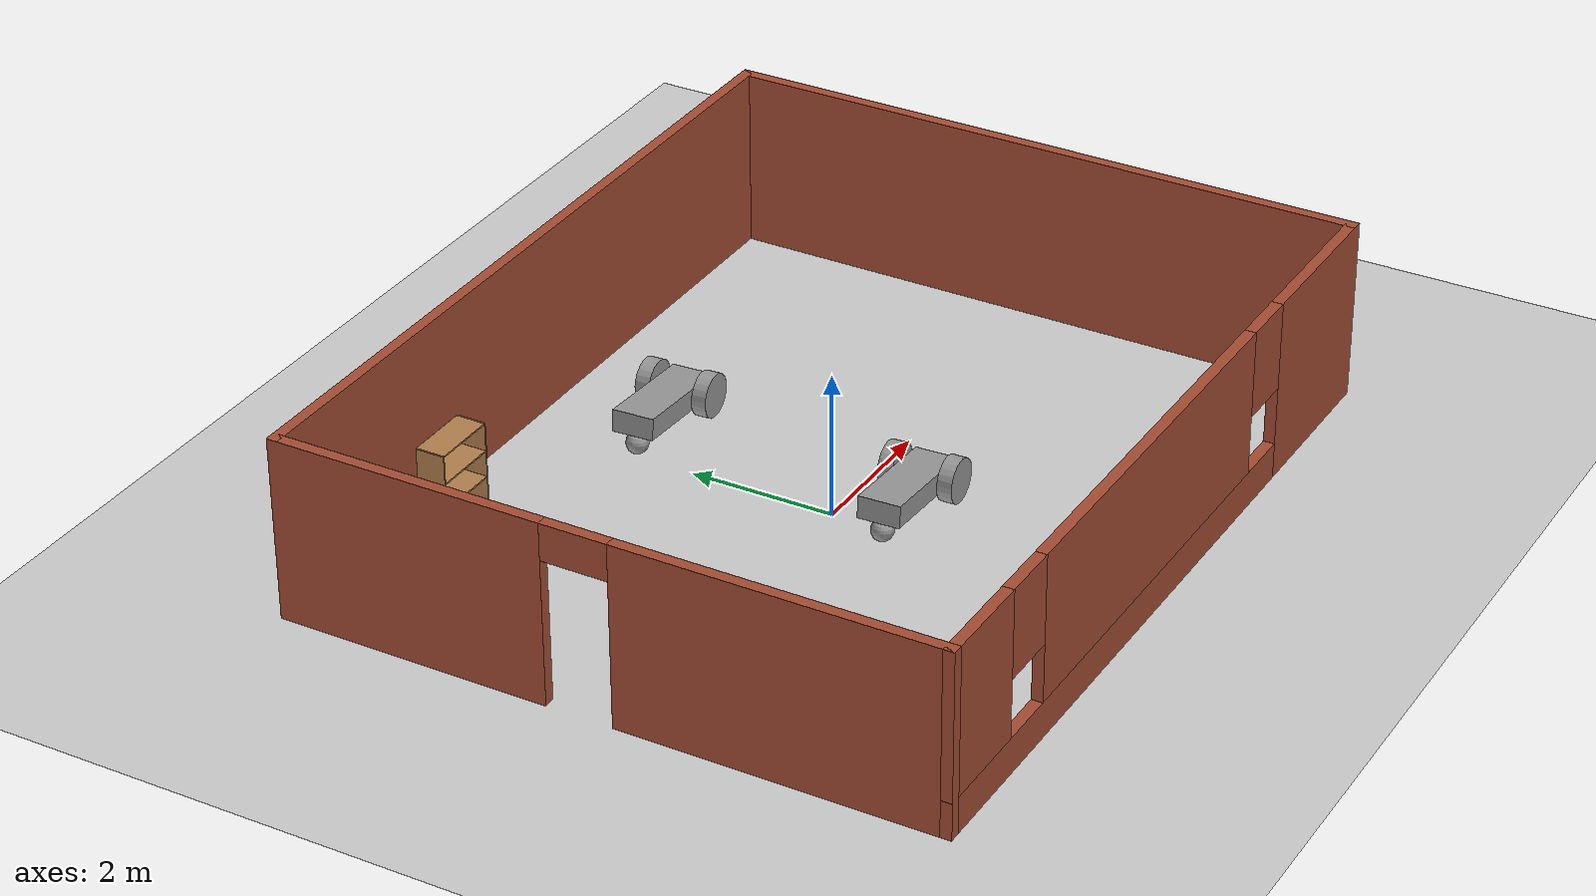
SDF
<sdf version="1.6">
 <world name="default">
  <plugin name="helloWorld" filename="libhelloWorld.so"/>
  <light name="sun" type="directional">
   <pose>0 0 10 0 -0 0</pose>
   <diffuse>0.8 0.8 0.8 1</diffuse>
   <specular>0.2 0.2 0.2 1</specular>
   <attenuation>
    <range>1000</range>
    <constant>0.9</constant>
    <linear>0.01</linear>
    <quadratic>0.001</quadratic>
   </attenuation>
   <direction>-0.5 0.1 -0.9</direction>
  </light>
  <model name="ground_plane">
   <static>1</static>
   <link name="link">
    <collision name="collision">
     <geometry><plane><normal>0 0 1</normal><size>100 100</size></plane></geometry>
     <surface>
      <contact><collide_bitmask>65535</collide_bitmask></contact>
      <friction><ode><mu>100</mu><mu2>50</mu2></ode></friction>
     </surface>
    </collision>
    <visual name="visual">
     <cast_shadows>0</cast_shadows>
     <geometry><plane><normal>0 0 1</normal><size>100 100</size></plane></geometry>
     <material>
      <script><uri>file://media/materials/scripts/gazebo.material</uri><name>Gazebo/Grey</name></script>
     </material>
    </visual>
   </link>
  </model>
  <gravity>0 0 -9.8</gravity>
  <magnetic_field>6e-06 2.3e-05 -4.2e-05</magnetic_field>
  <atmosphere type="adiabatic"/>
  <physics name="default_physics" default="0" type="ode">
   <max_step_size>0.001</max_step_size>
   <real_time_factor>1</real_time_factor>
   <real_time_update_rate>1000</real_time_update_rate>
  </physics>
  <scene><ambient>0.4 0.4 0.4 1</ambient><background>0.7 0.7 0.7 1</background><shadows>1</shadows></scene>
  <spherical_coordinates>
   <surface_model>EARTH_WGS84</surface_model>
   <latitude_deg>0</latitude_deg>
   <longitude_deg>0</longitude_deg>
   <elevation>0</elevation>
   <heading_deg>0</heading_deg>
  </spherical_coordinates>
  <model name="basicBuilding">
   <pose>0.33245 0.113374 0 0 -0 0</pose>
   <link name="Wall_2">
    <pose>-5.425 0 0 0 -0 1.5708</pose>
    <visual name="Wall_2_Visual_0">
     <pose>-2.31293 0 1.25 0 -0 0</pose>
     <geometry><box><size>4.37413 0.15 2.5</size></box></geometry>
     <material>
      <script><uri>file://media/materials/scripts/gazebo.material</uri><name>Gazebo/Bricks</name></script>
      <ambient>1 1 1 1</ambient>
     </material>
     <meta><layer>0</layer></meta>
    </visual>
    <collision name="Wall_2_Collision_0">
     <geometry><box><size>4.37413 0.15 2.5</size></box></geometry>
     <pose>-2.31293 0 1.25 0 -0 0</pose>
    </collision>
    <visual name="Wall_2_Visual_1">
     <pose>2.63707 0 1.25 0 -0 0</pose>
     <geometry><box><size>3.72587 0.15 2.5</size></box></geometry>
     <material>
      <script><uri>file://media/materials/scripts/gazebo.material</uri><name>Gazebo/Bricks</name></script>
      <ambient>1 1 1 1</ambient>
     </material>
     <meta><layer>0</layer></meta>
    </visual>
    <collision name="Wall_2_Collision_1">
     <geometry><box><size>3.72587 0.15 2.5</size></box></geometry>
     <pose>2.63707 0 1.25 0 -0 0</pose>
    </collision>
    <visual name="Wall_2_Visual_2">
     <pose>0.324133 0 2.25 0 -0 0</pose>
     <geometry><box><size>0.9 0.15 0.5</size></box></geometry>
     <material>
      <script><uri>file://media/materials/scripts/gazebo.material</uri><name>Gazebo/Bricks</name></script>
      <ambient>1 1 1 1</ambient>
     </material>
     <meta><layer>0</layer></meta>
    </visual>
    <collision name="Wall_2_Collision_2">
     <geometry><box><size>0.9 0.15 0.5</size></box></geometry>
     <pose>0.324133 0 2.25 0 -0 0</pose>
    </collision>
   </link>
   <link name="Wall_3">
    <collision name="Wall_3_Collision">
     <geometry><box><size>11 0.15 2.5</size></box></geometry>
     <pose>0 0 1.25 0 -0 0</pose>
    </collision>
    <visual name="Wall_3_Visual">
     <pose>0 0 1.25 0 -0 0</pose>
     <geometry><box><size>11 0.15 2.5</size></box></geometry>
     <material>
      <script><uri>file://media/materials/scripts/gazebo.material</uri><name>Gazebo/Bricks</name></script>
      <ambient>0.760784 0.662745 0.627451 1</ambient>
     </material>
     <meta><layer>0</layer></meta>
    </visual>
    <pose>0 4.425 0 0 -0 0</pose>
   </link>
   <link name="Wall_4">
    <collision name="Wall_4_Collision">
     <geometry><box><size>9 0.15 2.5</size></box></geometry>
     <pose>0 0 1.25 0 -0 0</pose>
    </collision>
    <visual name="Wall_4_Visual">
     <pose>0 0 1.25 0 -0 0</pose>
     <geometry><box><size>9 0.15 2.5</size></box></geometry>
     <material>
      <script><uri>file://media/materials/scripts/gazebo.material</uri><name>Gazebo/Bricks</name></script>
      <ambient>0.760784 0.662745 0.627451 1</ambient>
     </material>
     <meta><layer>0</layer></meta>
    </visual>
    <pose>5.425 0 0 0 0 -1.5708</pose>
   </link>
   <link name="Wall_5">
    <pose>0 -4.425 0 0 -0 3.14159</pose>
    <visual name="Wall_5_Visual_0">
     <pose>-4.30944 0 1.25 0 -0 0</pose>
     <geometry><box><size>2.38112 0.15 2.5</size></box></geometry>
     <material>
      <script><uri>file://media/materials/scripts/gazebo.material</uri><name>Gazebo/Bricks</name></script>
      <ambient>0.760784 0.662745 0.627451 1</ambient>
     </material>
     <meta><layer>0</layer></meta>
    </visual>
    <collision name="Wall_5_Collision_0">
     <geometry><box><size>2.38112 0.15 2.5</size></box></geometry>
     <pose>-4.30944 0 1.25 0 -0 0</pose>
    </collision>
    <visual name="Wall_5_Visual_1">
     <pose>1.19056 0 0.25 0 -0 0</pose>
     <geometry><box><size>8.61888 0.15 0.5</size></box></geometry>
     <material>
      <script><uri>file://media/materials/scripts/gazebo.material</uri><name>Gazebo/Bricks</name></script>
      <ambient>0.760784 0.662745 0.627451 1</ambient>
     </material>
     <meta><layer>0</layer></meta>
    </visual>
    <collision name="Wall_5_Collision_1">
     <geometry><box><size>8.61888 0.15 0.5</size></box></geometry>
     <pose>1.19056 0 0.25 0 -0 0</pose>
    </collision>
    <visual name="Wall_5_Visual_2">
     <pose>0.491179 0 1.5 0 -0 0</pose>
     <geometry><box><size>5.62012 0.15 2</size></box></geometry>
     <material>
      <script><uri>file://media/materials/scripts/gazebo.material</uri><name>Gazebo/Bricks</name></script>
      <ambient>0.760784 0.662745 0.627451 1</ambient>
     </material>
     <meta><layer>0</layer></meta>
    </visual>
    <collision name="Wall_5_Collision_2">
     <geometry><box><size>5.62012 0.15 2</size></box></geometry>
     <pose>0.491179 0 1.5 0 -0 0</pose>
    </collision>
    <visual name="Wall_5_Visual_3">
     <pose>4.80062 0 1.5 0 -0 0</pose>
     <geometry><box><size>1.39876 0.15 2</size></box></geometry>
     <material>
      <script><uri>file://media/materials/scripts/gazebo.material</uri><name>Gazebo/Bricks</name></script>
      <ambient>0.760784 0.662745 0.627451 1</ambient>
     </material>
     <meta><layer>0</layer></meta>
    </visual>
    <collision name="Wall_5_Collision_3">
     <geometry><box><size>1.39876 0.15 2</size></box></geometry>
     <pose>4.80062 0 1.5 0 -0 0</pose>
    </collision>
    <visual name="Wall_5_Visual_4">
     <pose>-2.71888 0 1.9 0 -0 0</pose>
     <geometry><box><size>0.8 0.15 1.2</size></box></geometry>
     <material>
      <script><uri>file://media/materials/scripts/gazebo.material</uri><name>Gazebo/Bricks</name></script>
      <ambient>0.760784 0.662745 0.627451 1</ambient>
     </material>
     <meta><layer>0</layer></meta>
    </visual>
    <collision name="Wall_5_Collision_4">
     <geometry><box><size>0.8 0.15 1.2</size></box></geometry>
     <pose>-2.71888 0 1.9 0 -0 0</pose>
    </collision>
    <visual name="Wall_5_Visual_5">
     <pose>3.70124 0 1.9 0 -0 0</pose>
     <geometry><box><size>0.8 0.15 1.2</size></box></geometry>
     <material>
      <script><uri>file://media/materials/scripts/gazebo.material</uri><name>Gazebo/Bricks</name></script>
      <ambient>0.760784 0.662745 0.627451 1</ambient>
     </material>
     <meta><layer>0</layer></meta>
    </visual>
    <collision name="Wall_5_Collision_5">
     <geometry><box><size>0.8 0.15 1.2</size></box></geometry>
     <pose>3.70124 0 1.9 0 -0 0</pose>
    </collision>
   </link>
   <static>1</static>
  </model>
  <model name="basicModel">
   <link name="link_0">
    <pose>0.4007 0.521134 0.074628 0 -0 0</pose>
    <inertial>
     <mass>0.28118</mass>
     <inertia>
      <ixx>0.00978459</ixx>
      <ixy>0</ixy>
      <ixz>0</ixz>
      <iyy>0.0658198</iyy>
      <iyz>0</iyz>
      <izz>0.07147</izz>
     </inertia>
    </inertial>
    <visual name="visual">
     <geometry><box><size>1.64948 0.573899 0.297019</size></box></geometry>
     <material>
      <lighting>1</lighting>
      <script><uri>file://media/materials/scripts/gazebo.material</uri><name>Gazebo/Grey</name></script>
      <shader type="pixel"><normal_map>__default__</normal_map></shader>
      <ambient>0.3 0.3 0.3 1</ambient>
      <diffuse>0.7 0.7 0.7 1</diffuse>
      <specular>0.01 0.01 0.01 1</specular>
      <emissive>0 0 0 1</emissive>
     </material>
    </visual>
    <collision name="collision">
     <geometry><box><size>1.64948 0.573899 0.297019</size></box></geometry>
     <surface>
      <friction>
       <ode><mu>1</mu><mu2>1</mu2><fdir1>0 0 0</fdir1><slip1>0</slip1><slip2>0</slip2></ode>
       <torsional>
        <coefficient>1</coefficient>
        <patch_radius>0</patch_radius>
        <surface_radius>0</surface_radius>
        <use_patch_radius>1</use_patch_radius>
        <ode><slip>0</slip></ode>
       </torsional>
      </friction>
      <bounce><restitution_coefficient>0</restitution_coefficient><threshold>1e+06</threshold></bounce>
      <contact>
       <collide_without_contact>0</collide_without_contact>
       <collide_without_contact_bitmask>1</collide_without_contact_bitmask>
       <collide_bitmask>1</collide_bitmask>
       <ode>
        <soft_cfm>0</soft_cfm>
        <soft_erp>0.2</soft_erp>
        <kp>1e+13</kp>
        <kd>1</kd>
        <max_vel>0.01</max_vel>
        <min_depth>0</min_depth>
       </ode>
       <bullet>
        <split_impulse>1</split_impulse>
        <split_impulse_penetration_threshold>-0.01</split_impulse_penetration_threshold>
        <soft_cfm>0</soft_cfm>
        <soft_erp>0.2</soft_erp>
        <kp>1e+13</kp>
        <kd>1</kd>
       </bullet>
      </contact>
     </surface>
    </collision>
   </link>
   <link name="link_1">
    <pose>0.925443 0.948112 0.074628 1.5707 -0 0</pose>
    <inertial>
     <mass>1</mass>
     <inertia><ixx>0.145833</ixx><ixy>0</ixy><ixz>0</ixz><iyy>0.145833</iyy><iyz>0</iyz><izz>0.125</izz></inertia>
    </inertial>
    <visual name="visual">
     <geometry><cylinder><radius>0.3</radius><length>0.2</length></cylinder></geometry>
     <material>
      <lighting>1</lighting>
      <script><uri>file://media/materials/scripts/gazebo.material</uri><name>Gazebo/Grey</name></script>
      <shader type="pixel"><normal_map>__default__</normal_map></shader>
      <ambient>0.3 0.3 0.3 1</ambient>
      <diffuse>0.7 0.7 0.7 1</diffuse>
      <specular>0.01 0.01 0.01 1</specular>
      <emissive>0 0 0 1</emissive>
     </material>
    </visual>
    <collision name="collision">
     <geometry><cylinder><radius>0.3</radius><length>0.2</length></cylinder></geometry>
     <surface>
      <friction>
       <ode><mu>1</mu><mu2>1</mu2><fdir1>0 0 0</fdir1><slip1>0</slip1><slip2>0</slip2></ode>
       <torsional>
        <coefficient>1</coefficient>
        <patch_radius>0</patch_radius>
        <surface_radius>0</surface_radius>
        <use_patch_radius>1</use_patch_radius>
        <ode><slip>0</slip></ode>
       </torsional>
      </friction>
      <bounce><restitution_coefficient>0</restitution_coefficient><threshold>1e+06</threshold></bounce>
      <contact>
       <collide_without_contact>0</collide_without_contact>
       <collide_without_contact_bitmask>1</collide_without_contact_bitmask>
       <collide_bitmask>1</collide_bitmask>
       <ode>
        <soft_cfm>0</soft_cfm>
        <soft_erp>0.2</soft_erp>
        <kp>1e+13</kp>
        <kd>1</kd>
        <max_vel>0.01</max_vel>
        <min_depth>0</min_depth>
       </ode>
       <bullet>
        <split_impulse>1</split_impulse>
        <split_impulse_penetration_threshold>-0.01</split_impulse_penetration_threshold>
        <soft_cfm>0</soft_cfm>
        <soft_erp>0.2</soft_erp>
        <kp>1e+13</kp>
        <kd>1</kd>
       </bullet>
      </contact>
     </surface>
    </collision>
   </link>
   <link name="link_1_clone">
    <pose>0.925443 0.134155 0.074628 1.5707 -0 0</pose>
    <inertial>
     <mass>1</mass>
     <inertia><ixx>0.145833</ixx><ixy>0</ixy><ixz>0</ixz><iyy>0.145833</iyy><iyz>0</iyz><izz>0.125</izz></inertia>
    </inertial>
    <visual name="visual">
     <geometry><cylinder><radius>0.3</radius><length>0.2</length></cylinder></geometry>
     <material>
      <lighting>1</lighting>
      <script><uri>file://media/materials/scripts/gazebo.material</uri><name>Gazebo/Grey</name></script>
      <shader type="pixel"><normal_map>__default__</normal_map></shader>
      <ambient>0.3 0.3 0.3 1</ambient>
      <diffuse>0.7 0.7 0.7 1</diffuse>
      <specular>0.01 0.01 0.01 1</specular>
      <emissive>0 0 0 1</emissive>
     </material>
    </visual>
    <collision name="collision">
     <geometry><cylinder><radius>0.3</radius><length>0.2</length></cylinder></geometry>
     <surface>
      <friction>
       <ode><mu>1</mu><mu2>1</mu2><fdir1>0 0 0</fdir1><slip1>0</slip1><slip2>0</slip2></ode>
       <torsional>
        <coefficient>1</coefficient>
        <patch_radius>0</patch_radius>
        <surface_radius>0</surface_radius>
        <use_patch_radius>1</use_patch_radius>
        <ode><slip>0</slip></ode>
       </torsional>
      </friction>
      <bounce><restitution_coefficient>0</restitution_coefficient><threshold>1e+06</threshold></bounce>
      <contact>
       <collide_without_contact>0</collide_without_contact>
       <collide_without_contact_bitmask>1</collide_without_contact_bitmask>
       <collide_bitmask>1</collide_bitmask>
       <ode>
        <soft_cfm>0</soft_cfm>
        <soft_erp>0.2</soft_erp>
        <kp>1e+13</kp>
        <kd>1</kd>
        <max_vel>0.01</max_vel>
        <min_depth>0</min_depth>
       </ode>
       <bullet>
        <split_impulse>1</split_impulse>
        <split_impulse_penetration_threshold>-0.01</split_impulse_penetration_threshold>
        <soft_cfm>0</soft_cfm>
        <soft_erp>0.2</soft_erp>
        <kp>1e+13</kp>
        <kd>1</kd>
       </bullet>
      </contact>
     </surface>
    </collision>
   </link>
   <link name="link_2">
    <pose>-0.274042 0.521134 -0.223882 0 -0 0</pose>
    <inertial>
     <mass>1</mass>
     <inertia><ixx>0.1</ixx><ixy>0</ixy><ixz>0</ixz><iyy>0.1</iyy><iyz>0</iyz><izz>0.1</izz></inertia>
    </inertial>
    <visual name="visual">
     <geometry><sphere><radius>0.15</radius></sphere></geometry>
     <material>
      <lighting>1</lighting>
      <script><uri>file://media/materials/scripts/gazebo.material</uri><name>Gazebo/Grey</name></script>
      <shader type="pixel"><normal_map>__default__</normal_map></shader>
      <ambient>0.3 0.3 0.3 1</ambient>
      <diffuse>0.7 0.7 0.7 1</diffuse>
      <specular>0.01 0.01 0.01 1</specular>
      <emissive>0 0 0 1</emissive>
     </material>
    </visual>
    <collision name="collision">
     <geometry><sphere><radius>0.15</radius></sphere></geometry>
     <surface>
      <friction>
       <ode><mu>1</mu><mu2>1</mu2><fdir1>0 0 0</fdir1><slip1>0</slip1><slip2>0</slip2></ode>
       <torsional>
        <coefficient>1</coefficient>
        <patch_radius>0</patch_radius>
        <surface_radius>0</surface_radius>
        <use_patch_radius>1</use_patch_radius>
        <ode><slip>0</slip></ode>
       </torsional>
      </friction>
      <bounce><restitution_coefficient>0</restitution_coefficient><threshold>1e+06</threshold></bounce>
      <contact>
       <collide_without_contact>0</collide_without_contact>
       <collide_without_contact_bitmask>1</collide_without_contact_bitmask>
       <collide_bitmask>1</collide_bitmask>
       <ode>
        <soft_cfm>0</soft_cfm>
        <soft_erp>0.2</soft_erp>
        <kp>1e+13</kp>
        <kd>1</kd>
        <max_vel>0.01</max_vel>
        <min_depth>0</min_depth>
       </ode>
       <bullet>
        <split_impulse>1</split_impulse>
        <split_impulse_penetration_threshold>-0.01</split_impulse_penetration_threshold>
        <soft_cfm>0</soft_cfm>
        <soft_erp>0.2</soft_erp>
        <kp>1e+13</kp>
        <kd>1</kd>
       </bullet>
      </contact>
     </surface>
    </collision>
   </link>
   <joint name="link_0_JOINT_1" type="revolute">
    <parent>link_0</parent>
    <child>link_1</child>
    <axis>
     <xyz>0 0 1</xyz>
     <use_parent_model_frame>0</use_parent_model_frame>
     <limit>
      <lower>-1.79769e+308</lower>
      <upper>1.79769e+308</upper>
      <effort>-1</effort>
      <velocity>-1</velocity>
     </limit>
     <dynamics>
      <spring_reference>0</spring_reference>
      <spring_stiffness>0</spring_stiffness>
      <damping>0</damping>
      <friction>0</friction>
     </dynamics>
    </axis>
    <physics>
     <ode><limit><cfm>0</cfm><erp>0.2</erp></limit><suspension><cfm>0</cfm><erp>0.2</erp></suspension></ode>
    </physics>
   </joint>
   <joint name="link_0_JOINT_2" type="revolute">
    <parent>link_0</parent>
    <child>link_1_clone</child>
    <axis>
     <xyz>0 0 1</xyz>
     <use_parent_model_frame>0</use_parent_model_frame>
     <limit>
      <lower>-1.79769e+308</lower>
      <upper>1.79769e+308</upper>
      <effort>-1</effort>
      <velocity>-1</velocity>
     </limit>
     <dynamics>
      <spring_reference>0</spring_reference>
      <spring_stiffness>0</spring_stiffness>
      <damping>0</damping>
     </dynamics>
    </axis>
    <physics>
     <ode><limit><cfm>0</cfm><erp>0.2</erp></limit><suspension><cfm>0</cfm><erp>0.2</erp></suspension></ode>
    </physics>
   </joint>
   <joint name="link_0_JOINT_3" type="ball">
    <parent>link_0</parent>
    <child>link_2</child>
    <physics>
     <ode><limit><cfm>0</cfm><erp>0.2</erp></limit><suspension><cfm>0</cfm><erp>0.2</erp></suspension></ode>
    </physics>
   </joint>
   <static>0</static>
   <pose>0.429337 2.37664 0.338791 -2e-06 0.122258 0.06117</pose>
  </model>
  <model name="basicModel_0">
   <link name="link_0">
    <pose>0.4007 0.521134 0.074628 0 -0 0</pose>
    <inertial>
     <mass>0.28118</mass>
     <inertia>
      <ixx>0.00978459</ixx>
      <ixy>0</ixy>
      <ixz>0</ixz>
      <iyy>0.0658198</iyy>
      <iyz>0</iyz>
      <izz>0.07147</izz>
     </inertia>
    </inertial>
    <visual name="visual">
     <geometry><box><size>1.64948 0.573899 0.297019</size></box></geometry>
     <material>
      <lighting>1</lighting>
      <script><uri>file://media/materials/scripts/gazebo.material</uri><name>Gazebo/Grey</name></script>
      <shader type="pixel"><normal_map>__default__</normal_map></shader>
      <ambient>0.3 0.3 0.3 1</ambient>
      <diffuse>0.7 0.7 0.7 1</diffuse>
      <specular>0.01 0.01 0.01 1</specular>
      <emissive>0 0 0 1</emissive>
     </material>
    </visual>
    <collision name="collision">
     <geometry><box><size>1.64948 0.573899 0.297019</size></box></geometry>
     <surface>
      <friction>
       <ode><mu>1</mu><mu2>1</mu2><fdir1>0 0 0</fdir1><slip1>0</slip1><slip2>0</slip2></ode>
       <torsional>
        <coefficient>1</coefficient>
        <patch_radius>0</patch_radius>
        <surface_radius>0</surface_radius>
        <use_patch_radius>1</use_patch_radius>
        <ode><slip>0</slip></ode>
       </torsional>
      </friction>
      <bounce><restitution_coefficient>0</restitution_coefficient><threshold>1e+06</threshold></bounce>
      <contact>
       <collide_without_contact>0</collide_without_contact>
       <collide_without_contact_bitmask>1</collide_without_contact_bitmask>
       <collide_bitmask>1</collide_bitmask>
       <ode>
        <soft_cfm>0</soft_cfm>
        <soft_erp>0.2</soft_erp>
        <kp>1e+13</kp>
        <kd>1</kd>
        <max_vel>0.01</max_vel>
        <min_depth>0</min_depth>
       </ode>
       <bullet>
        <split_impulse>1</split_impulse>
        <split_impulse_penetration_threshold>-0.01</split_impulse_penetration_threshold>
        <soft_cfm>0</soft_cfm>
        <soft_erp>0.2</soft_erp>
        <kp>1e+13</kp>
        <kd>1</kd>
       </bullet>
      </contact>
     </surface>
    </collision>
   </link>
   <link name="link_1">
    <pose>0.925443 0.948112 0.074628 1.5707 -0 0</pose>
    <inertial>
     <mass>1</mass>
     <inertia><ixx>0.145833</ixx><ixy>0</ixy><ixz>0</ixz><iyy>0.145833</iyy><iyz>0</iyz><izz>0.125</izz></inertia>
    </inertial>
    <visual name="visual">
     <geometry><cylinder><radius>0.3</radius><length>0.2</length></cylinder></geometry>
     <material>
      <lighting>1</lighting>
      <script><uri>file://media/materials/scripts/gazebo.material</uri><name>Gazebo/Grey</name></script>
      <shader type="pixel"><normal_map>__default__</normal_map></shader>
      <ambient>0.3 0.3 0.3 1</ambient>
      <diffuse>0.7 0.7 0.7 1</diffuse>
      <specular>0.01 0.01 0.01 1</specular>
      <emissive>0 0 0 1</emissive>
     </material>
    </visual>
    <collision name="collision">
     <geometry><cylinder><radius>0.3</radius><length>0.2</length></cylinder></geometry>
     <surface>
      <friction>
       <ode><mu>1</mu><mu2>1</mu2><fdir1>0 0 0</fdir1><slip1>0</slip1><slip2>0</slip2></ode>
       <torsional>
        <coefficient>1</coefficient>
        <patch_radius>0</patch_radius>
        <surface_radius>0</surface_radius>
        <use_patch_radius>1</use_patch_radius>
        <ode><slip>0</slip></ode>
       </torsional>
      </friction>
      <bounce><restitution_coefficient>0</restitution_coefficient><threshold>1e+06</threshold></bounce>
      <contact>
       <collide_without_contact>0</collide_without_contact>
       <collide_without_contact_bitmask>1</collide_without_contact_bitmask>
       <collide_bitmask>1</collide_bitmask>
       <ode>
        <soft_cfm>0</soft_cfm>
        <soft_erp>0.2</soft_erp>
        <kp>1e+13</kp>
        <kd>1</kd>
        <max_vel>0.01</max_vel>
        <min_depth>0</min_depth>
       </ode>
       <bullet>
        <split_impulse>1</split_impulse>
        <split_impulse_penetration_threshold>-0.01</split_impulse_penetration_threshold>
        <soft_cfm>0</soft_cfm>
        <soft_erp>0.2</soft_erp>
        <kp>1e+13</kp>
        <kd>1</kd>
       </bullet>
      </contact>
     </surface>
    </collision>
   </link>
   <link name="link_1_clone">
    <pose>0.925443 0.134155 0.074628 1.5707 -0 0</pose>
    <inertial>
     <mass>1</mass>
     <inertia><ixx>0.145833</ixx><ixy>0</ixy><ixz>0</ixz><iyy>0.145833</iyy><iyz>0</iyz><izz>0.125</izz></inertia>
    </inertial>
    <visual name="visual">
     <geometry><cylinder><radius>0.3</radius><length>0.2</length></cylinder></geometry>
     <material>
      <lighting>1</lighting>
      <script><uri>file://media/materials/scripts/gazebo.material</uri><name>Gazebo/Grey</name></script>
      <shader type="pixel"><normal_map>__default__</normal_map></shader>
      <ambient>0.3 0.3 0.3 1</ambient>
      <diffuse>0.7 0.7 0.7 1</diffuse>
      <specular>0.01 0.01 0.01 1</specular>
      <emissive>0 0 0 1</emissive>
     </material>
    </visual>
    <collision name="collision">
     <geometry><cylinder><radius>0.3</radius><length>0.2</length></cylinder></geometry>
     <surface>
      <friction>
       <ode><mu>1</mu><mu2>1</mu2><fdir1>0 0 0</fdir1><slip1>0</slip1><slip2>0</slip2></ode>
       <torsional>
        <coefficient>1</coefficient>
        <patch_radius>0</patch_radius>
        <surface_radius>0</surface_radius>
        <use_patch_radius>1</use_patch_radius>
        <ode><slip>0</slip></ode>
       </torsional>
      </friction>
      <bounce><restitution_coefficient>0</restitution_coefficient><threshold>1e+06</threshold></bounce>
      <contact>
       <collide_without_contact>0</collide_without_contact>
       <collide_without_contact_bitmask>1</collide_without_contact_bitmask>
       <collide_bitmask>1</collide_bitmask>
       <ode>
        <soft_cfm>0</soft_cfm>
        <soft_erp>0.2</soft_erp>
        <kp>1e+13</kp>
        <kd>1</kd>
        <max_vel>0.01</max_vel>
        <min_depth>0</min_depth>
       </ode>
       <bullet>
        <split_impulse>1</split_impulse>
        <split_impulse_penetration_threshold>-0.01</split_impulse_penetration_threshold>
        <soft_cfm>0</soft_cfm>
        <soft_erp>0.2</soft_erp>
        <kp>1e+13</kp>
        <kd>1</kd>
       </bullet>
      </contact>
     </surface>
    </collision>
   </link>
   <link name="link_2">
    <pose>-0.274042 0.521134 -0.223882 0 -0 0</pose>
    <inertial>
     <mass>1</mass>
     <inertia><ixx>0.1</ixx><ixy>0</ixy><ixz>0</ixz><iyy>0.1</iyy><iyz>0</iyz><izz>0.1</izz></inertia>
    </inertial>
    <visual name="visual">
     <geometry><sphere><radius>0.15</radius></sphere></geometry>
     <material>
      <lighting>1</lighting>
      <script><uri>file://media/materials/scripts/gazebo.material</uri><name>Gazebo/Grey</name></script>
      <shader type="pixel"><normal_map>__default__</normal_map></shader>
      <ambient>0.3 0.3 0.3 1</ambient>
      <diffuse>0.7 0.7 0.7 1</diffuse>
      <specular>0.01 0.01 0.01 1</specular>
      <emissive>0 0 0 1</emissive>
     </material>
    </visual>
    <collision name="collision">
     <geometry><sphere><radius>0.15</radius></sphere></geometry>
     <surface>
      <friction>
       <ode><mu>1</mu><mu2>1</mu2><fdir1>0 0 0</fdir1><slip1>0</slip1><slip2>0</slip2></ode>
       <torsional>
        <coefficient>1</coefficient>
        <patch_radius>0</patch_radius>
        <surface_radius>0</surface_radius>
        <use_patch_radius>1</use_patch_radius>
        <ode><slip>0</slip></ode>
       </torsional>
      </friction>
      <bounce><restitution_coefficient>0</restitution_coefficient><threshold>1e+06</threshold></bounce>
      <contact>
       <collide_without_contact>0</collide_without_contact>
       <collide_without_contact_bitmask>1</collide_without_contact_bitmask>
       <collide_bitmask>1</collide_bitmask>
       <ode>
        <soft_cfm>0</soft_cfm>
        <soft_erp>0.2</soft_erp>
        <kp>1e+13</kp>
        <kd>1</kd>
        <max_vel>0.01</max_vel>
        <min_depth>0</min_depth>
       </ode>
       <bullet>
        <split_impulse>1</split_impulse>
        <split_impulse_penetration_threshold>-0.01</split_impulse_penetration_threshold>
        <soft_cfm>0</soft_cfm>
        <soft_erp>0.2</soft_erp>
        <kp>1e+13</kp>
        <kd>1</kd>
       </bullet>
      </contact>
     </surface>
    </collision>
   </link>
   <joint name="link_0_JOINT_1" type="revolute">
    <parent>link_0</parent>
    <child>link_1</child>
    <axis>
     <xyz>0 0 1</xyz>
     <use_parent_model_frame>0</use_parent_model_frame>
     <limit>
      <lower>-1.79769e+308</lower>
      <upper>1.79769e+308</upper>
      <effort>-1</effort>
      <velocity>-1</velocity>
     </limit>
     <dynamics>
      <spring_reference>0</spring_reference>
      <spring_stiffness>0</spring_stiffness>
      <damping>0</damping>
      <friction>0</friction>
     </dynamics>
    </axis>
    <physics>
     <ode><limit><cfm>0</cfm><erp>0.2</erp></limit><suspension><cfm>0</cfm><erp>0.2</erp></suspension></ode>
    </physics>
   </joint>
   <joint name="link_0_JOINT_2" type="revolute">
    <parent>link_0</parent>
    <child>link_1_clone</child>
    <axis>
     <xyz>0 0 1</xyz>
     <use_parent_model_frame>0</use_parent_model_frame>
     <limit>
      <lower>-1.79769e+308</lower>
      <upper>1.79769e+308</upper>
      <effort>-1</effort>
      <velocity>-1</velocity>
     </limit>
     <dynamics>
      <spring_reference>0</spring_reference>
      <spring_stiffness>0</spring_stiffness>
      <damping>0</damping>
     </dynamics>
    </axis>
    <physics>
     <ode><limit><cfm>0</cfm><erp>0.2</erp></limit><suspension><cfm>0</cfm><erp>0.2</erp></suspension></ode>
    </physics>
   </joint>
   <joint name="link_0_JOINT_3" type="ball">
    <parent>link_0</parent>
    <child>link_2</child>
    <physics>
     <ode><limit><cfm>0</cfm><erp>0.2</erp></limit><suspension><cfm>0</cfm><erp>0.2</erp></suspension></ode>
    </physics>
   </joint>
   <static>0</static>
   <pose>0.136681 -1.31279 0.338789 5e-06 0.122253 0.046528</pose>
  </model>
  <model name="bookshelf">
   <static>1</static>
   <link name="link">
    <inertial><mass>1</mass></inertial>
    <collision name="back">
     <pose>0 0.005 0.6 0 -0 0</pose>
     <geometry><box><size>0.9 0.01 1.2</size></box></geometry>
    </collision>
    <visual name="visual1">
     <pose>0 0.005 0.6 0 -0 0</pose>
     <geometry><box><size>0.9 0.01 1.2</size></box></geometry>
     <material>
      <script><uri>file://media/materials/scripts/gazebo.material</uri><name>Gazebo/Wood</name></script>
     </material>
    </visual>
    <collision name="left_side">
     <pose>0.45 -0.195 0.6 0 -0 0</pose>
     <geometry><box><size>0.02 0.4 1.2</size></box></geometry>
    </collision>
    <visual name="visual2">
     <pose>0.45 -0.195 0.6 0 -0 0</pose>
     <geometry><box><size>0.02 0.4 1.2</size></box></geometry>
     <material>
      <script><uri>file://media/materials/scripts/gazebo.material</uri><name>Gazebo/Wood</name></script>
     </material>
    </visual>
    <collision name="right_side">
     <pose>-0.45 -0.195 0.6 0 -0 0</pose>
     <geometry><box><size>0.02 0.4 1.2</size></box></geometry>
    </collision>
    <visual name="visual3">
     <pose>-0.45 -0.195 0.6 0 -0 0</pose>
     <geometry><box><size>0.02 0.4 1.2</size></box></geometry>
     <material>
      <script><uri>file://media/materials/scripts/gazebo.material</uri><name>Gazebo/Wood</name></script>
     </material>
    </visual>
    <collision name="bottom">
     <pose>0 -0.195 0.03 0 -0 0</pose>
     <geometry><box><size>0.88 0.4 0.06</size></box></geometry>
    </collision>
    <visual name="visual4">
     <pose>0 -0.195 0.03 0 -0 0</pose>
     <geometry><box><size>0.88 0.4 0.06</size></box></geometry>
     <material>
      <script><uri>file://media/materials/scripts/gazebo.material</uri><name>Gazebo/Wood</name></script>
     </material>
    </visual>
    <collision name="top">
     <pose>0 -0.195 1.19 0 -0 0</pose>
     <geometry><box><size>0.88 0.4 0.02</size></box></geometry>
    </collision>
    <visual name="visual5">
     <pose>0 -0.195 1.19 0 -0 0</pose>
     <geometry><box><size>0.88 0.4 0.02</size></box></geometry>
     <material>
      <script><uri>file://media/materials/scripts/gazebo.material</uri><name>Gazebo/Wood</name></script>
     </material>
    </visual>
    <collision name="low_shelf">
     <pose>0 -0.195 0.43 0 -0 0</pose>
     <geometry><box><size>0.88 0.4 0.02</size></box></geometry>
    </collision>
    <visual name="visual6">
     <pose>0 -0.195 0.43 0 -0 0</pose>
     <geometry><box><size>0.88 0.4 0.02</size></box></geometry>
     <material>
      <script><uri>file://media/materials/scripts/gazebo.material</uri><name>Gazebo/Wood</name></script>
     </material>
    </visual>
    <collision name="high_shelf">
     <pose>0 -0.195 0.8 0 -0 0</pose>
     <geometry><box><size>0.88 0.4 0.02</size></box></geometry>
    </collision>
    <visual name="visual7">
     <pose>0 -0.195 0.8 0 -0 0</pose>
     <geometry><box><size>0.88 0.4 0.02</size></box></geometry>
     <material>
      <script><uri>file://media/materials/scripts/gazebo.material</uri><name>Gazebo/Wood</name></script>
     </material>
    </visual>
   </link>
   <pose>-2.33087 4.22164 0 0 -0 0</pose>
  </model>
 </world>
</sdf>
